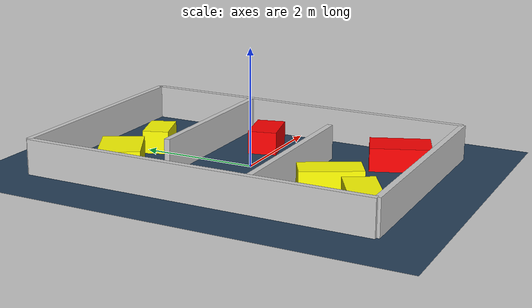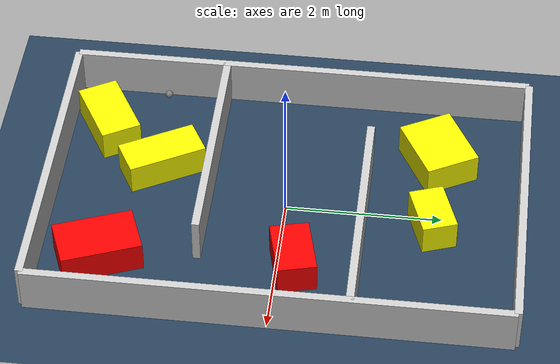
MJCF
<?xml version="1.0" ?>
<mujoco model="generated_environment">
  <option timestep="0.01" integrator="RK4" cone="elliptic"/>
  <default>
    <geom density="1"/>
  </default>
  <asset>
    <texture builtin="gradient" height="3072" rgb1="0.3 0.5 0.7" rgb2="0 0 0" type="skybox" width="512"/>
    <texture builtin="checker" height="300" mark="edge" markrgb="0.8 0.8 0.8" name="groundplane" rgb1="0.2 0.3 0.4" rgb2="0.1 0.2 0.3" type="2d" width="300"/>
    <material name="groundplane" reflectance="0.2" texrepeat="5 5" texture="groundplane" texuniform="true"/>
    <material name="robot" rgba="0.0 1.0 0.0 1"/>
  </asset>
  <worldbody>
    <light dir="0 0 -1" directional="true" pos="0 0 1.5"/>
    <geom condim="4" friction="1.0 0.005 0.001" material="groundplane" name="floor" size="0 0 0.05" type="plane"/>
    <body name="walls">
      <geom name="wall_1" condim="4" pos="-2.0 0.0 0.3" rgba="0.800000011920929 0.800000011920929 0.800000011920929 1.0" size="0.05 3.0 0.3" type="box"/>
      <geom name="wall_2" condim="4" pos="2.0 0.0 0.3" rgba="0.800000011920929 0.800000011920929 0.800000011920929 1.0" size="0.05 3.0 0.3" type="box"/>
      <geom name="wall_3" condim="4" pos="0.0 -3.0 0.3" rgba="0.800000011920929 0.800000011920929 0.800000011920929 1.0" size="2.0 0.05 0.3" type="box"/>
      <geom name="wall_4" condim="4" pos="0.0 3.0 0.3" rgba="0.800000011920929 0.800000011920929 0.800000011920929 1.0" size="2.0 0.05 0.3" type="box"/>
      <geom name="wall_5" condim="4" pos="-0.5 -1.0 0.3" rgba="0.800000011920929 0.800000011920929 0.800000011920929 1.0" size="1.5 0.05 0.3" type="box"/>
      <geom name="wall_6" condim="4" pos="0.5 1.0 0.3" rgba="0.800000011920929 0.800000011920929 0.800000011920929 1.0" size="1.5 0.05 0.3" type="box"/>
    </body>
    <body name="robot">
      <joint name="joint_x" type="slide" pos="0 0 0" axis="1 0 0"/>
      <joint name="joint_y" type="slide" pos="0 0 0" axis="0 1 0"/>
      <geom name="robot" type="sphere" pos="-1.7366050923473975 -1.760987555069154 0.2" size="0.05" mass="5." friction="1.0 0.005 0.0001" condim="4"/>
      <site name="sensor_ball"/>
    </body>
    <body name="obstacle_1_static">
      <geom name="obstacle_1_static" condim="4" pos="1.1277345211975116 -2.216189528966165 0.2" euler="0 0 291.3158660516766" friction="1.0 0.005 0.001" rgba="1 0 0 1" size="0.5095890352822199 0.3170771035360363 0.2" type="box"/>
    </body>
    <body name="obstacle_2_movable">
      <geom name="obstacle_2_movable" condim="4" pos="-0.5172340182190223 -1.662885260388539 0.2" euler="0 0 209.13182249100737" friction="1.0 0.005 0.001" rgba="1 1 0 1" size="0.24367806836605427 0.5129896921765627 0.2" type="box" mass="0.1"/>
      <joint type="free"/>
    </body>
    <body name="obstacle_3_movable">
      <geom name="obstacle_3_movable" condim="4" pos="-1.0128489947866974 1.8844851443155823 0.2" euler="0 0 298.36694082215604" friction="1.0 0.005 0.001" rgba="1 1 0 1" size="0.35469964667759296 0.4457255759515706 0.2" type="box" mass="0.1"/>
      <joint type="free"/>
    </body>
    <body name="obstacle_4_static">
      <geom name="obstacle_4_static" condim="4" pos="1.036272901548454 0.21517409098978257 0.2" euler="0 0 13.886664005403585" friction="1.0 0.005 0.001" rgba="1 0 0 1" size="0.37829072300236743 0.24735913998837794 0.2" type="box"/>
    </body>
    <body name="obstacle_5_movable">
      <geom name="obstacle_5_movable" condim="4" pos="0.18088120425203802 1.8844860519401205 0.2" euler="0 0 109.27375307034124" friction="1.0 0.005 0.001" rgba="1 1 0 1" size="0.2234238906773511 0.34165378120962375 0.2" type="box" mass="0.1"/>
      <joint type="free"/>
    </body>
    <body name="obstacle_6_movable">
      <geom name="obstacle_6_movable" condim="4" pos="-1.1698326348638362 -2.4638038492041585 0.2" euler="0 0 29.757802293774198" friction="1.0 0.005 0.001" rgba="1 1 0 1" size="0.4716254422462809 0.26317664563817894 0.2" type="box" mass="0.1"/>
      <joint type="free"/>
    </body>
  </worldbody>
  <actuator>
    <motor name="actuator_x" joint="joint_x" gear="1" ctrlrange="-1 1"/>
    <motor name="actuator_y" joint="joint_y" gear="1" ctrlrange="-1 1"/>
  </actuator>
</mujoco>
